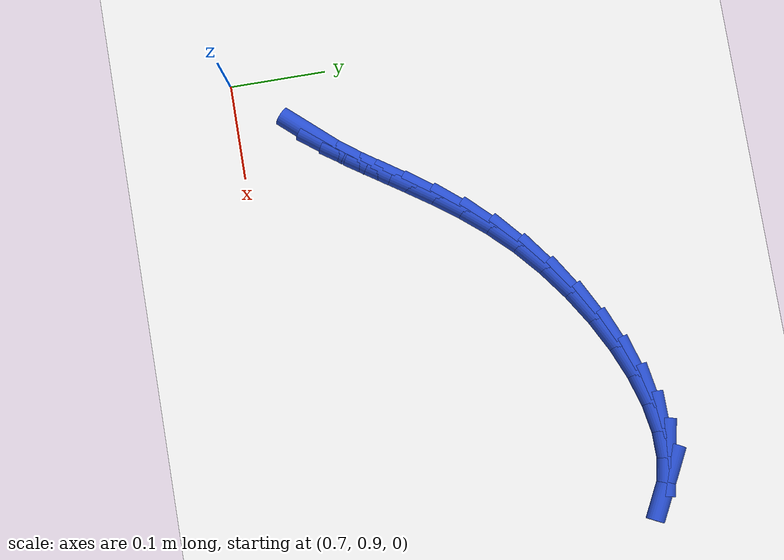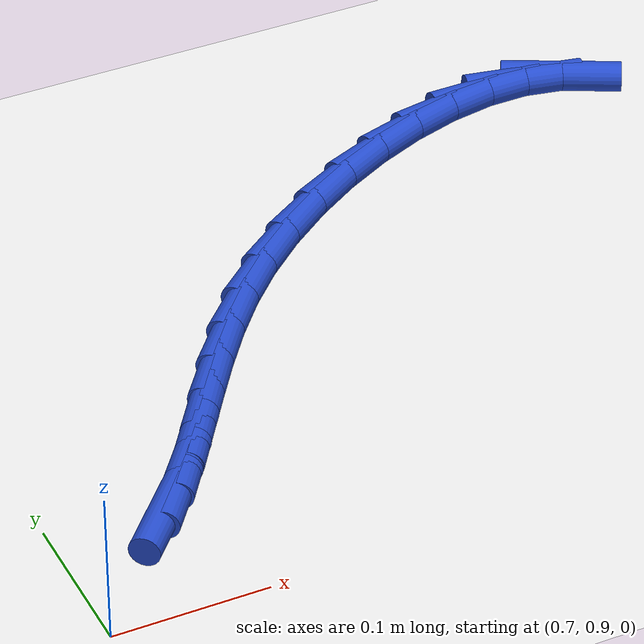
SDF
<sdf version="1.6">
 <world name="default">
  <model name="ground_plane">
   <static>1</static>
   <link name="link">
    <collision name="collision">
     <geometry><plane><normal>0 0 1</normal><size>100 100</size></plane></geometry>
     <surface><friction><ode><mu>100</mu><mu2>50</mu2></ode></friction></surface>
    </collision>
    <visual name="visual">
     <cast_shadows>0</cast_shadows>
     <geometry><plane><normal>0 0 1</normal><size>100 100</size></plane></geometry>
     <material>
      <script><uri>file://media/materials/scripts/gazebo.material</uri><name>Gazebo/WhiteGlow</name></script>
     </material>
    </visual>
   </link>
  </model>
  <model name="line">
   <link name="link_50">
    <pose>0.7684575833105038 0.9783064825315326 0.01 0 1.57 0.8436183278955764</pose>
    <collision name="collision">
     <geometry><cylinder><radius>0.01</radius><length>0.08</length></cylinder></geometry>
    </collision>
    <visual name="visual">
     <material>
      <script><name>Gazebo/Blue</name><uri>file://media/materials/scripts/gazebo.material</uri></script>
     </material>
     <geometry><cylinder><radius>0.01</radius><length>0.08</length></cylinder></geometry>
    </visual>
   </link>
   <link name="link_51">
    <pose>0.7856473744890136 0.9976241486275458 0.01 0 1.57 0.9223212880032153</pose>
    <collision name="collision">
     <geometry><cylinder><radius>0.01</radius><length>0.08</length></cylinder></geometry>
    </collision>
    <visual name="visual">
     <material>
      <script><name>Gazebo/Blue</name><uri>file://media/materials/scripts/gazebo.material</uri></script>
     </material>
     <geometry><cylinder><radius>0.01</radius><length>0.08</length></cylinder></geometry>
    </visual>
   </link>
   <link name="link_52">
    <pose>0.8020932888037904 1.0193263050169106 0.01 0 1.57 0.9662036940306503</pose>
    <collision name="collision">
     <geometry><cylinder><radius>0.01</radius><length>0.08</length></cylinder></geometry>
    </collision>
    <visual name="visual">
     <material>
      <script><name>Gazebo/Blue</name><uri>file://media/materials/scripts/gazebo.material</uri></script>
     </material>
     <geometry><cylinder><radius>0.01</radius><length>0.08</length></cylinder></geometry>
    </visual>
   </link>
   <link name="link_53">
    <pose>0.8183728328774906 1.0428891031699763 0.01 0 1.57 0.9802691333980146</pose>
    <collision name="collision">
     <geometry><cylinder><radius>0.01</radius><length>0.08</length></cylinder></geometry>
    </collision>
    <visual name="visual">
     <material>
      <script><name>Gazebo/Blue</name><uri>file://media/materials/scripts/gazebo.material</uri></script>
     </material>
     <geometry><cylinder><radius>0.01</radius><length>0.08</length></cylinder></geometry>
    </visual>
   </link>
   <link name="link_54">
    <pose>0.8350635133327708 1.0677886945570925 0.01 0 1.57 0.9684573554207071</pose>
    <collision name="collision">
     <geometry><cylinder><radius>0.01</radius><length>0.08</length></cylinder></geometry>
    </collision>
    <visual name="visual">
     <material>
      <script><name>Gazebo/Blue</name><uri>file://media/materials/scripts/gazebo.material</uri></script>
     </material>
     <geometry><cylinder><radius>0.01</radius><length>0.08</length></cylinder></geometry>
    </visual>
   </link>
   <link name="link_55">
    <pose>0.8527428367922871 1.093501230648608 0.01 0 1.57 0.9336200118960726</pose>
    <collision name="collision">
     <geometry><cylinder><radius>0.01</radius><length>0.08</length></cylinder></geometry>
    </collision>
    <visual name="visual">
     <material>
      <script><name>Gazebo/Blue</name><uri>file://media/materials/scripts/gazebo.material</uri></script>
     </material>
     <geometry><cylinder><radius>0.01</radius><length>0.08</length></cylinder></geometry>
    </visual>
   </link>
   <link name="link_56">
    <pose>0.871988309878696 1.1195028629148727 0.01 0 1.57 0.8779683117536206</pose>
    <collision name="collision">
     <geometry><cylinder><radius>0.01</radius><length>0.08</length></cylinder></geometry>
    </collision>
    <visual name="visual">
     <material>
      <script><name>Gazebo/Blue</name><uri>file://media/materials/scripts/gazebo.material</uri></script>
     </material>
     <geometry><cylinder><radius>0.01</radius><length>0.08</length></cylinder></geometry>
    </visual>
   </link>
   <link name="link_57">
    <pose>0.8933774392146541 1.1452697428262357 0.01 0 1.57 0.8036944621611402</pose>
    <collision name="collision">
     <geometry><cylinder><radius>0.01</radius><length>0.08</length></cylinder></geometry>
    </collision>
    <visual name="visual">
     <material>
      <script><name>Gazebo/Blue</name><uri>file://media/materials/scripts/gazebo.material</uri></script>
     </material>
     <geometry><cylinder><radius>0.01</radius><length>0.08</length></cylinder></geometry>
    </visual>
   </link>
   <link name="link_58">
    <pose>0.917486950826704 1.1702780286261705 0.01 0 1.57 0.7196453990966106</pose>
    <collision name="collision">
     <geometry><cylinder><radius>0.01</radius><length>0.08</length></cylinder></geometry>
    </collision>
    <visual name="visual">
     <material>
      <script><name>Gazebo/Blue</name><uri>file://media/materials/scripts/gazebo.material</uri></script>
     </material>
     <geometry><cylinder><radius>0.01</radius><length>0.08</length></cylinder></geometry>
    </visual>
   </link>
   <link name="link_59">
    <pose>0.9445609282666728 1.1940067648509556 0.01 0 1.57 0.640452583252448</pose>
    <collision name="collision">
     <geometry><cylinder><radius>0.01</radius><length>0.08</length></cylinder></geometry>
    </collision>
    <visual name="visual">
     <material>
      <script><name>Gazebo/Blue</name><uri>file://media/materials/scripts/gazebo.material</uri></script>
     </material>
     <geometry><cylinder><radius>0.01</radius><length>0.08</length></cylinder></geometry>
    </visual>
   </link>
   <link name="link_60">
    <pose>0.9739948989982113 1.2159423588408294 0.01 0 1.57 0.563675499750834</pose>
    <collision name="collision">
     <geometry><cylinder><radius>0.01</radius><length>0.08</length></cylinder></geometry>
    </collision>
    <visual name="visual">
     <material>
      <script><name>Gazebo/Blue</name><uri>file://media/materials/scripts/gazebo.material</uri></script>
     </material>
     <geometry><cylinder><radius>0.01</radius><length>0.08</length></cylinder></geometry>
    </visual>
   </link>
   <link name="link_61">
    <pose>1.0050510414973604 1.2355723749867777 0.01 0 1.57 0.4845077665282798</pose>
    <collision name="collision">
     <geometry><cylinder><radius>0.01</radius><length>0.08</length></cylinder></geometry>
    </collision>
    <visual name="visual">
     <material>
      <script><name>Gazebo/Blue</name><uri>file://media/materials/scripts/gazebo.material</uri></script>
     </material>
     <geometry><cylinder><radius>0.01</radius><length>0.08</length></cylinder></geometry>
    </visual>
   </link>
   <link name="link_62">
    <pose>1.0369915342401606 1.2523843776797845 0.01 0 1.57 0.397760566701612</pose>
    <collision name="collision">
     <geometry><cylinder><radius>0.01</radius><length>0.08</length></cylinder></geometry>
    </collision>
    <visual name="visual">
     <material>
      <script><name>Gazebo/Blue</name><uri>file://media/materials/scripts/gazebo.material</uri></script>
     </material>
     <geometry><cylinder><radius>0.01</radius><length>0.08</length></cylinder></geometry>
    </visual>
   </link>
   <link name="link_63">
    <pose>1.0690785557026525 1.2658659313108347 0.01 0 1.57 0.29698058577774566</pose>
    <collision name="collision">
     <geometry><cylinder><radius>0.01</radius><length>0.08</length></cylinder></geometry>
    </collision>
    <visual name="visual">
     <material>
      <script><name>Gazebo/Blue</name><uri>file://media/materials/scripts/gazebo.material</uri></script>
     </material>
     <geometry><cylinder><radius>0.01</radius><length>0.08</length></cylinder></geometry>
    </visual>
   </link>
   <link name="link_64">
    <pose>1.1005742843608772 1.2755046002709138 0.01 0 1.57 0.1733804689775308</pose>
    <collision name="collision">
     <geometry><cylinder><radius>0.01</radius><length>0.08</length></cylinder></geometry>
    </collision>
    <visual name="visual">
     <material>
      <script><name>Gazebo/Blue</name><uri>file://media/materials/scripts/gazebo.material</uri></script>
     </material>
     <geometry><cylinder><radius>0.01</radius><length>0.08</length></cylinder></geometry>
    </visual>
   </link>
   <link name="link_65">
    <pose>1.1307408986908751 1.2807879489510063 0.01 0 1.57 0.014788870014408064</pose>
    <collision name="collision">
     <geometry><cylinder><radius>0.01</radius><length>0.08</length></cylinder></geometry>
    </collision>
    <visual name="visual">
     <material>
      <script><name>Gazebo/Blue</name><uri>file://media/materials/scripts/gazebo.material</uri></script>
     </material>
     <geometry><cylinder><radius>0.01</radius><length>0.08</length></cylinder></geometry>
    </visual>
   </link>
   <link name="link_66">
    <pose>1.1588405771686872 1.2812035417420966 0.01 0 1.57 -0.19380511252535743</pose>
    <collision name="collision">
     <geometry><cylinder><radius>0.01</radius><length>0.08</length></cylinder></geometry>
    </collision>
    <visual name="visual">
     <material>
      <script><name>Gazebo/Blue</name><uri>file://media/materials/scripts/gazebo.material</uri></script>
     </material>
     <geometry><cylinder><radius>0.01</radius><length>0.08</length></cylinder></geometry>
    </visual>
   </link>
   <link name="link_67">
    <pose>1.184135498270354 1.2762389430351704 0.01 0 1.57 -0.4629506031863374</pose>
    <collision name="collision">
     <geometry><cylinder><radius>0.01</radius><length>0.08</length></cylinder></geometry>
    </collision>
    <visual name="visual">
     <material>
      <script><name>Gazebo/Blue</name><uri>file://media/materials/scripts/gazebo.material</uri></script>
     </material>
     <geometry><cylinder><radius>0.01</radius><length>0.08</length></cylinder></geometry>
    </visual>
   </link>
  </model>
 </world>
</sdf>
